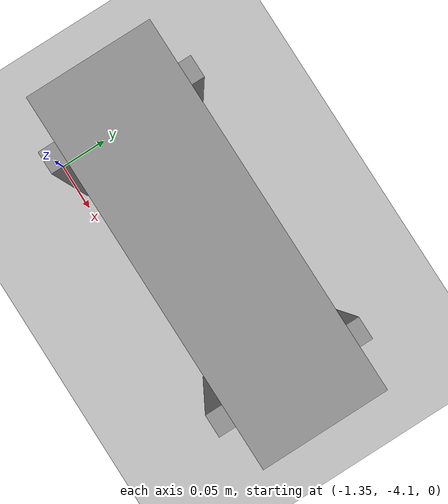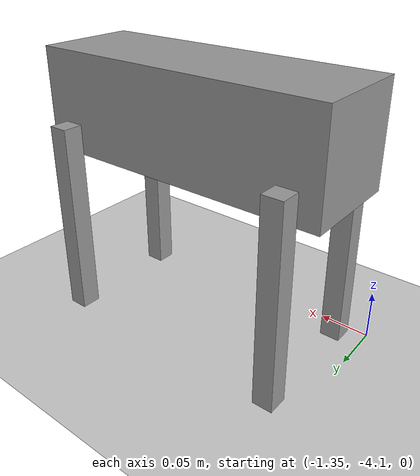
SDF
<sdf version="1.6">
 <world name="default">
  <model name="ground_plane">
   <static>1</static>
   <link name="link">
    <collision name="collision">
     <geometry><plane><normal>0 0 1</normal><size>100 100</size></plane></geometry>
     <surface>
      <contact><collide_bitmask>65535</collide_bitmask></contact>
      <friction><ode><mu>100</mu><mu2>50</mu2></ode></friction>
     </surface>
    </collision>
    <visual name="visual">
     <cast_shadows>0</cast_shadows>
     <geometry><plane><normal>0 0 1</normal><size>100 100</size></plane></geometry>
     <material>
      <script><uri>file://media/materials/scripts/gazebo.material</uri><name>Gazebo/Grey</name></script>
     </material>
    </visual>
   </link>
  </model>
  <model name="robot-dog">
   <link name="link_1">
    <pose>-2.67488 -4.128 0.54 0 -0 0</pose>
    <inertial>
     <mass>1</mass>
     <inertia>
      <ixx>0.166667</ixx>
      <ixy>0</ixy>
      <ixz>0</ixz>
      <iyy>0.166667</iyy>
      <iyz>0</iyz>
      <izz>0.166667</izz>
     </inertia>
    </inertial>
    <visual name="visual">
     <geometry><box><size>0.3 0.1 0.1</size></box></geometry>
     <material>
      <lighting>1</lighting>
      <script><uri>file://media/materials/scripts/gazebo.material</uri><name>Gazebo/Grey</name></script>
      <shader type="pixel"><normal_map>__default__</normal_map></shader>
      <ambient>0.3 0.3 0.3 1</ambient>
      <diffuse>0.7 0.7 0.7 1</diffuse>
      <specular>0.01 0.01 0.01 1</specular>
      <emissive>0 0 0 1</emissive>
     </material>
    </visual>
    <collision name="collision">
     <geometry><box><size>0.3 0.1 0.1</size></box></geometry>
     <surface>
      <friction>
       <ode><mu>1</mu><mu2>1</mu2><fdir1>0 0 0</fdir1><slip1>0</slip1><slip2>0</slip2></ode>
       <torsional>
        <coefficient>1</coefficient>
        <patch_radius>0</patch_radius>
        <surface_radius>0</surface_radius>
        <use_patch_radius>1</use_patch_radius>
        <ode><slip>0</slip></ode>
       </torsional>
      </friction>
      <bounce><restitution_coefficient>0</restitution_coefficient><threshold>1e+06</threshold></bounce>
      <contact>
       <collide_without_contact>0</collide_without_contact>
       <collide_without_contact_bitmask>1</collide_without_contact_bitmask>
       <collide_bitmask>1</collide_bitmask>
       <ode>
        <soft_cfm>0</soft_cfm>
        <soft_erp>0.2</soft_erp>
        <kp>1e+13</kp>
        <kd>1</kd>
        <max_vel>0.01</max_vel>
        <min_depth>0</min_depth>
       </ode>
       <bullet>
        <split_impulse>1</split_impulse>
        <split_impulse_penetration_threshold>-0.01</split_impulse_penetration_threshold>
        <soft_cfm>0</soft_cfm>
        <soft_erp>0.2</soft_erp>
        <kp>1e+13</kp>
        <kd>1</kd>
       </bullet>
      </contact>
     </surface>
    </collision>
   </link>
   <link name="link_2">
    <pose>-2.55488 -4.068 0.42 3.14159 1.57079 3.14159</pose>
    <inertial>
     <mass>1</mass>
     <inertia>
      <ixx>0.166667</ixx>
      <ixy>0</ixy>
      <ixz>0</ixz>
      <iyy>0.166667</iyy>
      <iyz>0</iyz>
      <izz>0.166667</izz>
     </inertia>
    </inertial>
    <visual name="visual">
     <geometry><box><size>0.2 0.02 0.02</size></box></geometry>
     <material>
      <lighting>1</lighting>
      <script><uri>file://media/materials/scripts/gazebo.material</uri><name>Gazebo/Grey</name></script>
      <shader type="pixel"><normal_map>__default__</normal_map></shader>
      <ambient>0.3 0.3 0.3 1</ambient>
      <diffuse>0.7 0.7 0.7 1</diffuse>
      <specular>0.01 0.01 0.01 1</specular>
      <emissive>0 0 0 1</emissive>
     </material>
    </visual>
    <collision name="collision">
     <geometry><box><size>0.2 0.02 0.02</size></box></geometry>
     <surface>
      <friction>
       <ode><mu>1</mu><mu2>1</mu2><fdir1>0 0 0</fdir1><slip1>0</slip1><slip2>0</slip2></ode>
       <torsional>
        <coefficient>1</coefficient>
        <patch_radius>0</patch_radius>
        <surface_radius>0</surface_radius>
        <use_patch_radius>1</use_patch_radius>
        <ode><slip>0</slip></ode>
       </torsional>
      </friction>
      <bounce><restitution_coefficient>0</restitution_coefficient><threshold>1e+06</threshold></bounce>
      <contact>
       <collide_without_contact>0</collide_without_contact>
       <collide_without_contact_bitmask>1</collide_without_contact_bitmask>
       <collide_bitmask>1</collide_bitmask>
       <ode>
        <soft_cfm>0</soft_cfm>
        <soft_erp>0.2</soft_erp>
        <kp>1e+13</kp>
        <kd>1</kd>
        <max_vel>0.01</max_vel>
        <min_depth>0</min_depth>
       </ode>
       <bullet>
        <split_impulse>1</split_impulse>
        <split_impulse_penetration_threshold>-0.01</split_impulse_penetration_threshold>
        <soft_cfm>0</soft_cfm>
        <soft_erp>0.2</soft_erp>
        <kp>1e+13</kp>
        <kd>1</kd>
       </bullet>
      </contact>
     </surface>
    </collision>
   </link>
   <link name="link_2_clone">
    <pose>-2.79488 -4.068 0.42 3.14159 1.57079 3.14159</pose>
    <inertial>
     <mass>1</mass>
     <inertia>
      <ixx>0.166667</ixx>
      <ixy>0</ixy>
      <ixz>0</ixz>
      <iyy>0.166667</iyy>
      <iyz>0</iyz>
      <izz>0.166667</izz>
     </inertia>
    </inertial>
    <visual name="visual">
     <geometry><box><size>0.2 0.02 0.02</size></box></geometry>
     <material>
      <lighting>1</lighting>
      <script><uri>file://media/materials/scripts/gazebo.material</uri><name>Gazebo/Grey</name></script>
      <shader type="pixel"><normal_map>__default__</normal_map></shader>
      <ambient>0.3 0.3 0.3 1</ambient>
      <diffuse>0.7 0.7 0.7 1</diffuse>
      <specular>0.01 0.01 0.01 1</specular>
      <emissive>0 0 0 1</emissive>
     </material>
    </visual>
    <collision name="collision">
     <geometry><box><size>0.2 0.02 0.02</size></box></geometry>
     <surface>
      <friction>
       <ode><mu>1</mu><mu2>1</mu2><fdir1>0 0 0</fdir1><slip1>0</slip1><slip2>0</slip2></ode>
       <torsional>
        <coefficient>1</coefficient>
        <patch_radius>0</patch_radius>
        <surface_radius>0</surface_radius>
        <use_patch_radius>1</use_patch_radius>
        <ode><slip>0</slip></ode>
       </torsional>
      </friction>
      <bounce><restitution_coefficient>0</restitution_coefficient><threshold>1e+06</threshold></bounce>
      <contact>
       <collide_without_contact>0</collide_without_contact>
       <collide_without_contact_bitmask>1</collide_without_contact_bitmask>
       <collide_bitmask>1</collide_bitmask>
       <ode>
        <soft_cfm>0</soft_cfm>
        <soft_erp>0.2</soft_erp>
        <kp>1e+13</kp>
        <kd>1</kd>
        <max_vel>0.01</max_vel>
        <min_depth>0</min_depth>
       </ode>
       <bullet>
        <split_impulse>1</split_impulse>
        <split_impulse_penetration_threshold>-0.01</split_impulse_penetration_threshold>
        <soft_cfm>0</soft_cfm>
        <soft_erp>0.2</soft_erp>
        <kp>1e+13</kp>
        <kd>1</kd>
       </bullet>
      </contact>
     </surface>
    </collision>
   </link>
   <link name="link_2_clone_0">
    <pose>-2.55488 -4.188 0.42 0 1.57079 0</pose>
    <inertial>
     <mass>1</mass>
     <inertia>
      <ixx>0.166667</ixx>
      <ixy>0</ixy>
      <ixz>0</ixz>
      <iyy>0.166667</iyy>
      <iyz>0</iyz>
      <izz>0.166667</izz>
     </inertia>
    </inertial>
    <visual name="visual">
     <geometry><box><size>0.2 0.02 0.02</size></box></geometry>
     <material>
      <lighting>1</lighting>
      <script><uri>file://media/materials/scripts/gazebo.material</uri><name>Gazebo/Grey</name></script>
      <shader type="pixel"><normal_map>__default__</normal_map></shader>
      <ambient>0.3 0.3 0.3 1</ambient>
      <diffuse>0.7 0.7 0.7 1</diffuse>
      <specular>0.01 0.01 0.01 1</specular>
      <emissive>0 0 0 1</emissive>
     </material>
    </visual>
    <collision name="collision">
     <geometry><box><size>0.2 0.02 0.02</size></box></geometry>
     <surface>
      <friction>
       <ode><mu>1</mu><mu2>1</mu2><fdir1>0 0 0</fdir1><slip1>0</slip1><slip2>0</slip2></ode>
       <torsional>
        <coefficient>1</coefficient>
        <patch_radius>0</patch_radius>
        <surface_radius>0</surface_radius>
        <use_patch_radius>1</use_patch_radius>
        <ode><slip>0</slip></ode>
       </torsional>
      </friction>
      <bounce><restitution_coefficient>0</restitution_coefficient><threshold>1e+06</threshold></bounce>
      <contact>
       <collide_without_contact>0</collide_without_contact>
       <collide_without_contact_bitmask>1</collide_without_contact_bitmask>
       <collide_bitmask>1</collide_bitmask>
       <ode>
        <soft_cfm>0</soft_cfm>
        <soft_erp>0.2</soft_erp>
        <kp>1e+13</kp>
        <kd>1</kd>
        <max_vel>0.01</max_vel>
        <min_depth>0</min_depth>
       </ode>
       <bullet>
        <split_impulse>1</split_impulse>
        <split_impulse_penetration_threshold>-0.01</split_impulse_penetration_threshold>
        <soft_cfm>0</soft_cfm>
        <soft_erp>0.2</soft_erp>
        <kp>1e+13</kp>
        <kd>1</kd>
       </bullet>
      </contact>
     </surface>
    </collision>
   </link>
   <link name="link_2_clone_1">
    <pose>-2.79488 -4.188 0.42 0 1.57079 0</pose>
    <inertial>
     <mass>1</mass>
     <inertia>
      <ixx>0.166667</ixx>
      <ixy>0</ixy>
      <ixz>0</ixz>
      <iyy>0.166667</iyy>
      <iyz>0</iyz>
      <izz>0.166667</izz>
     </inertia>
    </inertial>
    <visual name="visual">
     <geometry><box><size>0.2 0.02 0.02</size></box></geometry>
     <material>
      <lighting>1</lighting>
      <script><uri>file://media/materials/scripts/gazebo.material</uri><name>Gazebo/Grey</name></script>
      <shader type="pixel"><normal_map>__default__</normal_map></shader>
      <ambient>0.3 0.3 0.3 1</ambient>
      <diffuse>0.7 0.7 0.7 1</diffuse>
      <specular>0.01 0.01 0.01 1</specular>
      <emissive>0 0 0 1</emissive>
     </material>
    </visual>
    <collision name="collision">
     <geometry><box><size>0.2 0.02 0.02</size></box></geometry>
     <surface>
      <friction>
       <ode><mu>1</mu><mu2>1</mu2><fdir1>0 0 0</fdir1><slip1>0</slip1><slip2>0</slip2></ode>
       <torsional>
        <coefficient>1</coefficient>
        <patch_radius>0</patch_radius>
        <surface_radius>0</surface_radius>
        <use_patch_radius>1</use_patch_radius>
        <ode><slip>0</slip></ode>
       </torsional>
      </friction>
      <bounce><restitution_coefficient>0</restitution_coefficient><threshold>1e+06</threshold></bounce>
      <contact>
       <collide_without_contact>0</collide_without_contact>
       <collide_without_contact_bitmask>1</collide_without_contact_bitmask>
       <collide_bitmask>1</collide_bitmask>
       <ode>
        <soft_cfm>0</soft_cfm>
        <soft_erp>0.2</soft_erp>
        <kp>1e+13</kp>
        <kd>1</kd>
        <max_vel>0.01</max_vel>
        <min_depth>0</min_depth>
       </ode>
       <bullet>
        <split_impulse>1</split_impulse>
        <split_impulse_penetration_threshold>-0.01</split_impulse_penetration_threshold>
        <soft_cfm>0</soft_cfm>
        <soft_erp>0.2</soft_erp>
        <kp>1e+13</kp>
        <kd>1</kd>
       </bullet>
      </contact>
     </surface>
    </collision>
   </link>
   <joint name="link_1_JOINT_1" type="revolute">
    <parent>link_1</parent>
    <child>link_2</child>
    <pose>-0.09 0 0 0 -0 0</pose>
    <axis>
     <xyz>0 1 0</xyz>
     <use_parent_model_frame>0</use_parent_model_frame>
     <limit>
      <lower>-1.79769e+308</lower>
      <upper>1.79769e+308</upper>
      <effort>-1</effort>
      <velocity>-1</velocity>
     </limit>
     <dynamics>
      <spring_reference>0</spring_reference>
      <spring_stiffness>0</spring_stiffness>
      <damping>0</damping>
     </dynamics>
    </axis>
    <physics>
     <ode><limit><cfm>0</cfm><erp>0.2</erp></limit><suspension><cfm>0</cfm><erp>0.2</erp></suspension></ode>
    </physics>
   </joint>
   <joint name="link_1_JOINT_2" type="revolute">
    <parent>link_1</parent>
    <child>link_2_clone</child>
    <pose>-0.09 0 0 0 -0 0</pose>
    <axis>
     <xyz>0 1 0</xyz>
     <use_parent_model_frame>0</use_parent_model_frame>
     <limit>
      <lower>-1.79769e+308</lower>
      <upper>1.79769e+308</upper>
      <effort>-1</effort>
      <velocity>-1</velocity>
     </limit>
     <dynamics>
      <spring_reference>0</spring_reference>
      <spring_stiffness>0</spring_stiffness>
      <damping>0</damping>
     </dynamics>
    </axis>
    <physics>
     <ode><limit><cfm>0</cfm><erp>0.2</erp></limit><suspension><cfm>0</cfm><erp>0.2</erp></suspension></ode>
    </physics>
   </joint>
   <joint name="link_1_JOINT_3" type="revolute">
    <parent>link_1</parent>
    <child>link_2_clone_0</child>
    <pose>-0.09 0 0 0 -0 0</pose>
    <axis>
     <xyz>0 1 0</xyz>
     <use_parent_model_frame>0</use_parent_model_frame>
     <limit>
      <lower>-1.79769e+308</lower>
      <upper>1.79769e+308</upper>
      <effort>-1</effort>
      <velocity>-1</velocity>
     </limit>
     <dynamics>
      <spring_reference>0</spring_reference>
      <spring_stiffness>0</spring_stiffness>
      <damping>0</damping>
     </dynamics>
    </axis>
    <physics>
     <ode><limit><cfm>0</cfm><erp>0.2</erp></limit><suspension><cfm>0</cfm><erp>0.2</erp></suspension></ode>
    </physics>
   </joint>
   <joint name="link_1_JOINT_4" type="revolute">
    <parent>link_1</parent>
    <child>link_2_clone_1</child>
    <pose>-0.09 0 0 0 -0 0</pose>
    <axis>
     <xyz>0 1 0</xyz>
     <use_parent_model_frame>0</use_parent_model_frame>
     <limit>
      <lower>-1.79769e+308</lower>
      <upper>1.79769e+308</upper>
      <effort>-1</effort>
      <velocity>-1</velocity>
     </limit>
     <dynamics>
      <spring_reference>0</spring_reference>
      <spring_stiffness>0</spring_stiffness>
      <damping>0</damping>
     </dynamics>
    </axis>
    <physics>
     <ode><limit><cfm>0</cfm><erp>0.2</erp></limit><suspension><cfm>0</cfm><erp>0.2</erp></suspension></ode>
    </physics>
   </joint>
   <static>0</static>
   <pose>1.46943 0.106021 -0.319954 -1e-06 -2e-05 0.000996</pose>
  </model>
 </world>
</sdf>
